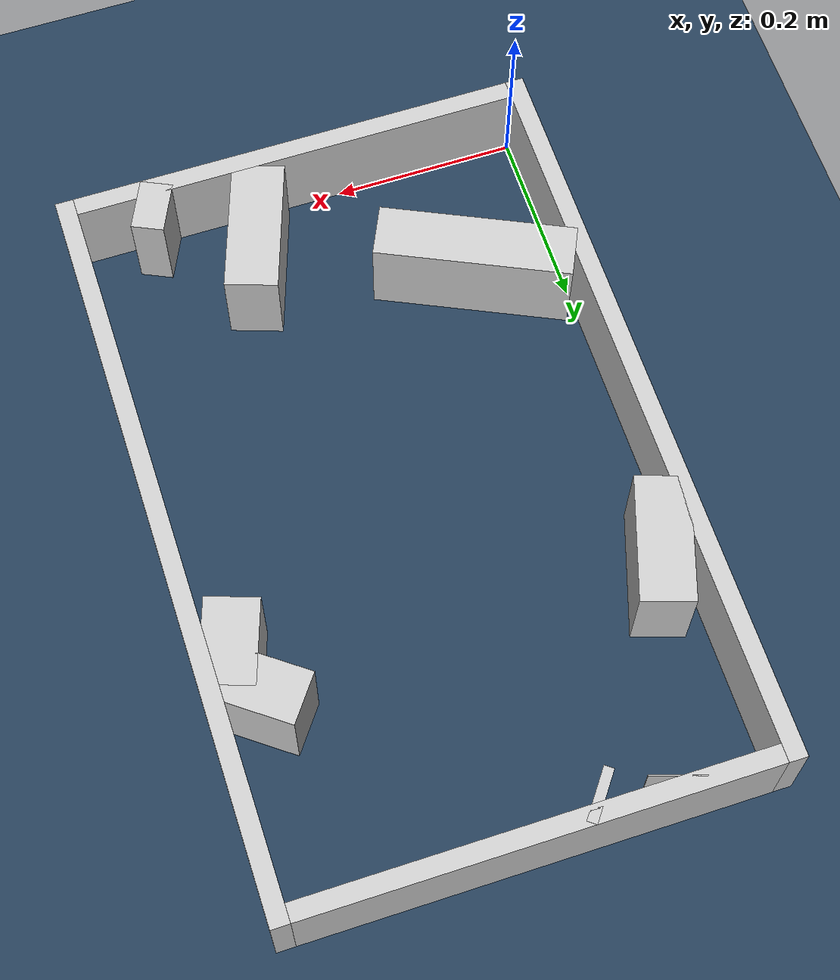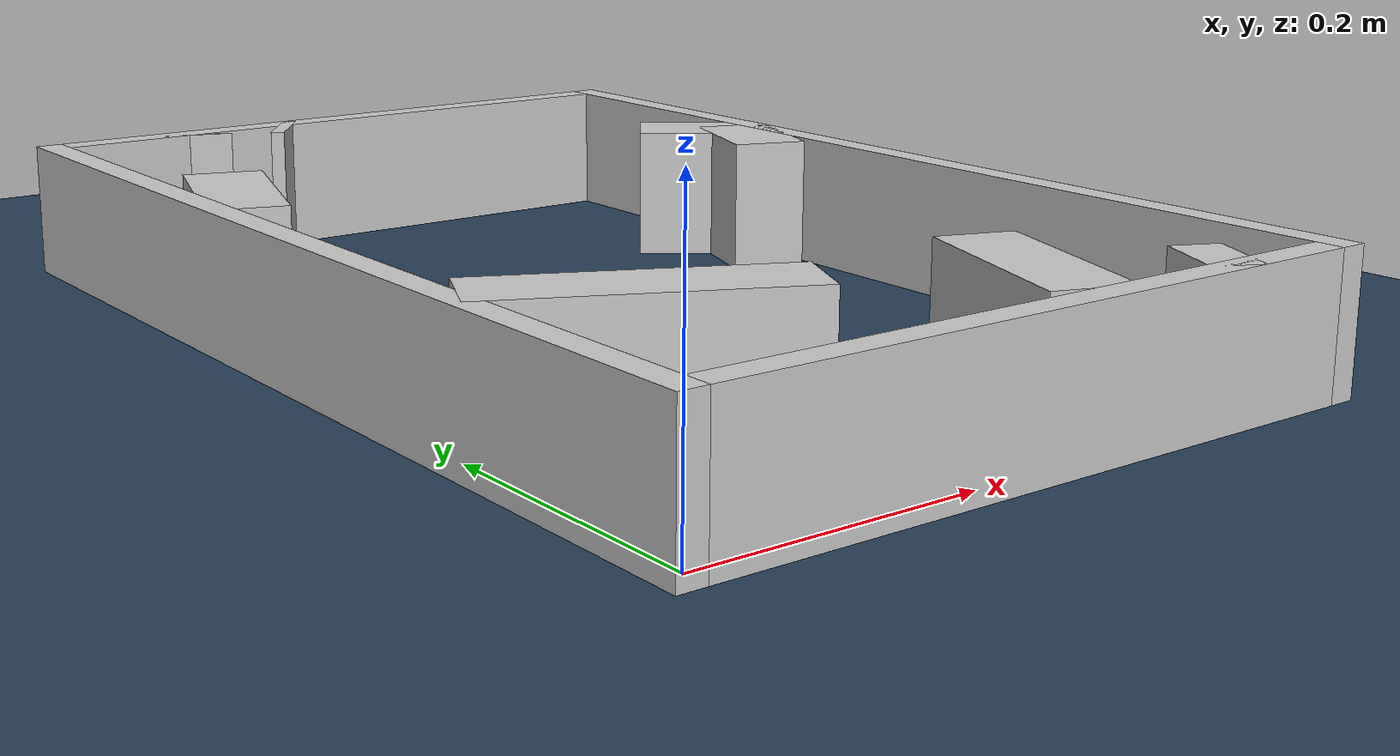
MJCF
<?xml version="1.0" ?>
<mujoco model="generated_real_template">
  <compiler angle="degree"/>
  <option timestep="0.002" integrator="implicitfast" iterations="100" cone="elliptic"/>
  <default>
    <geom density="1"/>
  </default>
  <asset>
    <texture builtin="gradient" height="3072" rgb1="0.3 0.5 0.7" rgb2="0 0 0" type="skybox" width="512"/>
    <texture builtin="checker" height="300" mark="edge" markrgb="0.8 0.8 0.8" name="groundplane" rgb1="0.2 0.3 0.4" rgb2="0.1 0.2 0.3" type="2d" width="300"/>
    <material name="groundplane" reflectance="0.2" texrepeat="5 5" texture="groundplane" texuniform="true"/>
  </asset>
  <worldbody>
    <light dir="0 0 -1" directional="true" pos="0 0 1.5"/>
    <geom name="floor" type="plane" condim="4" friction="0.5 0.005 0.001" material="groundplane" size="0 0 0.05"/>
    <body name="walls">
      <geom name="wall_boundary_left" type="box" condim="4" friction="1.0 0.005 0.0001" rgba="0.8 0.8 0.8 1" pos="-0.010000 0.387500 0.050000" euler="0 0 0.000000" size="0.010000 0.407500 0.050000"/>
      <geom name="wall_boundary_right" type="box" condim="4" friction="1.0 0.005 0.0001" rgba="0.8 0.8 0.8 1" pos="0.500000 0.387500 0.050000" euler="0 0 0.000000" size="0.010000 0.407500 0.050000"/>
      <geom name="wall_boundary_bottom" type="box" condim="4" friction="1.0 0.005 0.0001" rgba="0.8 0.8 0.8 1" pos="0.245000 -0.010000 0.050000" euler="0 0 0.000000" size="0.245000 0.010000 0.050000"/>
      <geom name="wall_boundary_top" type="box" condim="4" friction="1.0 0.005 0.0001" rgba="0.8 0.8 0.8 1" pos="0.245000 0.785000 0.050000" euler="0 0 0.000000" size="0.245000 0.010000 0.050000"/>
      <geom name="wall_inner_1_1" type="box" condim="4" friction="1.0 0.005 0.0001" rgba="0.8 0.8 0.8 1" pos="0.313649 0.069948 0.050000" euler="0 0 70.815338" size="0.074061 0.028500 0.050000"/>
      <geom name="wall_inner_1_2" type="box" condim="4" friction="1.0 0.005 0.0001" rgba="0.8 0.8 0.8 1" pos="0.468166 0.514043 0.050000" euler="0 0 70.815338" size="0.045391 0.028500 0.050000"/>
      <geom name="wall_inner_2_1" type="box" condim="4" friction="1.0 0.005 0.0001" rgba="0.8 0.8 0.8 1" pos="0.452828 0.564938 0.050000" euler="0 0 143.249195" size="0.046392 0.028500 0.050000"/>
      <geom name="wall_inner_2_2" type="box" condim="4" friction="1.0 0.005 0.0001" rgba="0.8 0.8 0.8 1" pos="0.179626 0.768953 0.050000" euler="0 0 143.249195" size="0.005365 0.028500 0.050000"/>
      <geom name="wall_inner_3_1" type="box" condim="4" friction="1.0 0.005 0.0001" rgba="0.8 0.8 0.8 1" pos="0.103962 0.774230 0.050000" euler="0 0 -108.191911" size="0.000811 0.028500 0.050000"/>
      <geom name="wall_inner_3_2" type="box" condim="4" friction="1.0 0.005 0.0001" rgba="0.8 0.8 0.8 1" pos="0.028196 0.543677 0.050000" euler="0 0 -108.191911" size="0.067648 0.028500 0.050000"/>
      <geom name="wall_inner_4_1" type="box" condim="4" friction="1.0 0.005 0.0001" rgba="0.8 0.8 0.8 1" pos="0.411631 0.013316 0.050000" euler="0 0 154.877418" size="0.017690 0.028500 0.050000"/>
      <geom name="wall_inner_4_2" type="box" condim="4" friction="1.0 0.005 0.0001" rgba="0.8 0.8 0.8 1" pos="0.096318 0.161171 0.050000" euler="0 0 154.877418" size="0.106381 0.028500 0.050000"/>
    </body>
  </worldbody>
</mujoco>
